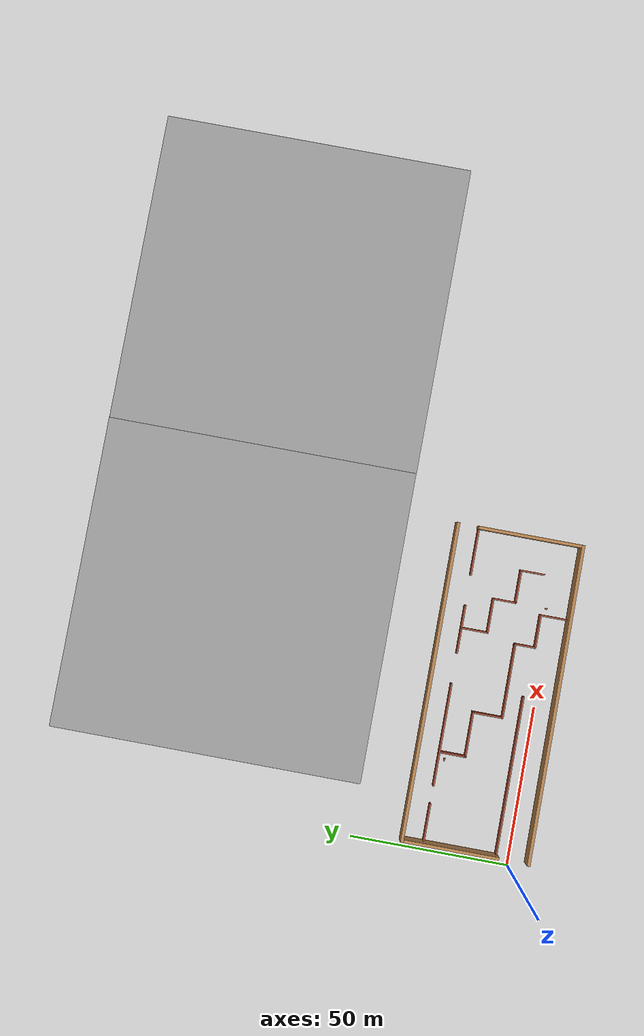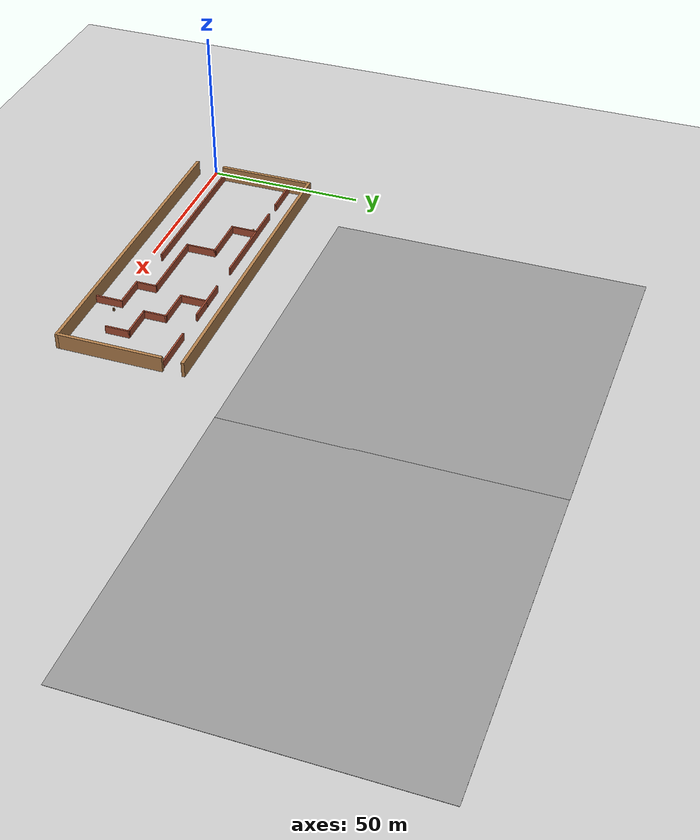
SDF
<sdf version="1.6">
 <world name="default">
  <model name="ground_plane">
   <static>1</static>
   <link name="link">
    <collision name="collision">
     <geometry><plane><normal>0 0 1</normal><size>100 100</size></plane></geometry>
     <surface><friction><ode><mu>100</mu><mu2>50</mu2></ode></friction></surface>
    </collision>
    <visual name="visual">
     <cast_shadows>0</cast_shadows>
     <geometry><plane><normal>0 0 1</normal><size>100 100</size></plane></geometry>
     <material>
      <script><uri>file://media/materials/scripts/gazebo.material</uri><name>Gazebo/Grey</name></script>
     </material>
    </visual>
   </link>
  </model>
  <model name="maze">
   <pose>52.7902 14.4068 0 0 -0 0</pose>
   <link name="Wall_1">
    <collision name="Wall_1_Collision">
     <geometry><box><size>101 1 5</size></box></geometry>
     <pose>0 0 2.5 0 -0 0</pose>
    </collision>
    <visual name="Wall_1_Visual">
     <pose>0 0 2.5 0 -0 0</pose>
     <geometry><box><size>101 1 5</size></box></geometry>
     <material>
      <script><uri>file://media/materials/scripts/gazebo.material</uri><name>Gazebo/Wood</name></script>
      <ambient>1 1 1 1</ambient>
     </material>
     <meta><layer>0</layer></meta>
    </visual>
    <pose>0 -19.946 0 0 -0 0</pose>
   </link>
   <link name="Wall_11">
    <collision name="Wall_11_Collision">
     <geometry><box><size>15.5 0.5 2.5</size></box></geometry>
     <pose>0 0 1.25 0 -0 0</pose>
    </collision>
    <visual name="Wall_11_Visual">
     <pose>0 0 1.25 0 -0 0</pose>
     <geometry><box><size>15.5 0.5 2.5</size></box></geometry>
     <material>
      <script><uri>file://media/materials/scripts/gazebo.material</uri><name>Gazebo/Bricks</name></script>
      <ambient>1 1 1 1</ambient>
     </material>
     <meta><layer>0</layer></meta>
    </visual>
    <pose>42.5 12.946 0 0 -0 0</pose>
   </link>
   <link name="Wall_13">
    <collision name="Wall_13_Collision">
     <geometry><box><size>8.756 0.5 2.5</size></box></geometry>
     <pose>0 0 1.25 0 -0 0</pose>
    </collision>
    <visual name="Wall_13_Visual">
     <pose>0 0 1.25 0 -0 0</pose>
     <geometry><box><size>8.756 0.5 2.5</size></box></geometry>
     <material>
      <script><uri>file://media/materials/scripts/gazebo.material</uri><name>Gazebo/Bricks</name></script>
      <ambient>1 1 1 1</ambient>
     </material>
     <meta><layer>0</layer></meta>
    </visual>
    <pose>-21.462 8.818 0 0 -0 -1.5708</pose>
   </link>
   <link name="Wall_14">
    <collision name="Wall_14_Collision">
     <geometry><box><size>14.529 0.5 2.5</size></box></geometry>
     <pose>0 0 1.25 0 -0 0</pose>
    </collision>
    <visual name="Wall_14_Visual">
     <pose>0 0 1.25 0 -0 0</pose>
     <geometry><box><size>14.529 0.5 2.5</size></box></geometry>
     <material>
      <script><uri>file://media/materials/scripts/gazebo.material</uri><name>Gazebo/Bricks</name></script>
      <ambient>1 1 1 1</ambient>
     </material>
     <meta><layer>0</layer></meta>
    </visual>
    <pose>-14.4475 4.69 0 0 -0 0</pose>
   </link>
   <link name="Wall_15">
    <collision name="Wall_15_Collision">
     <geometry><box><size>9.85048 0.5 2.5</size></box></geometry>
     <pose>0 0 1.25 0 -0 0</pose>
    </collision>
    <visual name="Wall_15_Visual">
     <pose>0 0 1.25 0 -0 0</pose>
     <geometry><box><size>9.85048 0.5 2.5</size></box></geometry>
     <material>
      <script><uri>file://media/materials/scripts/gazebo.material</uri><name>Gazebo/Bricks</name></script>
      <ambient>1 1 1 1</ambient>
     </material>
     <meta><layer>0</layer></meta>
    </visual>
    <pose>-7.433 0.015 0 0 -0 -1.5708</pose>
   </link>
   <link name="Wall_16">
    <collision name="Wall_16_Collision">
     <geometry><box><size>23.921 0.5 2.5</size></box></geometry>
     <pose>0 0 1.25 0 -0 0</pose>
    </collision>
    <visual name="Wall_16_Visual">
     <pose>0 0 1.25 0 -0 0</pose>
     <geometry><box><size>23.921 0.5 2.5</size></box></geometry>
     <material>
      <script><uri>file://media/materials/scripts/gazebo.material</uri><name>Gazebo/Bricks</name></script>
      <ambient>1 1 1 1</ambient>
     </material>
     <meta><layer>0</layer></meta>
    </visual>
    <pose>4.2775 -4.66 0 0 -0 0</pose>
   </link>
   <link name="Wall_17">
    <collision name="Wall_17_Collision">
     <geometry><box><size>6.85048 0.5 2.5</size></box></geometry>
     <pose>0 0 1.25 0 -0 0</pose>
    </collision>
    <visual name="Wall_17_Visual">
     <pose>0 0 1.25 0 -0 0</pose>
     <geometry><box><size>6.85048 0.5 2.5</size></box></geometry>
     <material>
      <script><uri>file://media/materials/scripts/gazebo.material</uri><name>Gazebo/Bricks</name></script>
      <ambient>1 1 1 1</ambient>
     </material>
     <meta><layer>0</layer></meta>
    </visual>
    <pose>15.988 -7.835 0 0 -0 -1.5708</pose>
   </link>
   <link name="Wall_18">
    <collision name="Wall_18_Collision">
     <geometry><box><size>10.85 0.5 2.5</size></box></geometry>
     <pose>0 0 1.25 0 -0 0</pose>
    </collision>
    <visual name="Wall_18_Visual">
     <pose>0 0 1.25 0 -0 0</pose>
     <geometry><box><size>10.85 0.5 2.5</size></box></geometry>
     <material>
      <script><uri>file://media/materials/scripts/gazebo.material</uri><name>Gazebo/Bricks</name></script>
      <ambient>1 1 1 1</ambient>
     </material>
     <meta><layer>0</layer></meta>
    </visual>
    <pose>21.163 -11.01 0 0 -0 0</pose>
   </link>
   <link name="Wall_19">
    <collision name="Wall_19_Collision">
     <geometry><box><size>9.544 0.5 2.5</size></box></geometry>
     <pose>0 0 1.25 0 -0 0</pose>
    </collision>
    <visual name="Wall_19_Visual">
     <pose>0 0 1.25 0 -0 0</pose>
     <geometry><box><size>9.544 0.5 2.5</size></box></geometry>
     <material>
      <script><uri>file://media/materials/scripts/gazebo.material</uri><name>Gazebo/Bricks</name></script>
      <ambient>1 1 1 1</ambient>
     </material>
     <meta><layer>0</layer></meta>
    </visual>
    <pose>26.338 -15.532 0 0 -0 -1.5708</pose>
   </link>
   <link name="Wall_23">
    <collision name="Wall_23_Collision">
     <geometry><box><size>50.5 0.5 2.5</size></box></geometry>
     <pose>0 0 1.25 0 -0 0</pose>
    </collision>
    <visual name="Wall_23_Visual">
     <pose>0 0 1.25 0 -0 0</pose>
     <geometry><box><size>50.5 0.5 2.5</size></box></geometry>
     <material>
      <script><uri>file://media/materials/scripts/gazebo.material</uri><name>Gazebo/Bricks</name></script>
      <ambient>1 1 1 1</ambient>
     </material>
     <meta><layer>0</layer></meta>
    </visual>
    <pose>-25 -10.054 0 0 -0 3.14159</pose>
   </link>
   <link name="Wall_25">
    <collision name="Wall_25_Collision">
     <geometry><box><size>8.864 0.5 2.5</size></box></geometry>
     <pose>0 0 1.25 0 -0 0</pose>
    </collision>
    <visual name="Wall_25_Visual">
     <pose>0 0 1.25 0 -0 0</pose>
     <geometry><box><size>8.864 0.5 2.5</size></box></geometry>
     <material>
      <script><uri>file://media/materials/scripts/gazebo.material</uri><name>Gazebo/Bricks</name></script>
      <ambient>1 1 1 1</ambient>
     </material>
     <meta><layer>0</layer></meta>
    </visual>
    <pose>17.924 8.764 0 0 -0 -1.5708</pose>
   </link>
   <link name="Wall_26">
    <collision name="Wall_26_Collision">
     <geometry><box><size>11.3502 0.5 2.5</size></box></geometry>
     <pose>0 0 1.25 0 -0 0</pose>
    </collision>
    <visual name="Wall_26_Visual">
     <pose>0 0 1.25 0 -0 0</pose>
     <geometry><box><size>11.3502 0.5 2.5</size></box></geometry>
     <material>
      <script><uri>file://media/materials/scripts/gazebo.material</uri><name>Gazebo/Bricks</name></script>
      <ambient>1 1 1 1</ambient>
     </material>
     <meta><layer>0</layer></meta>
    </visual>
    <pose>23.349 4.582 0 0 -0 0</pose>
   </link>
   <link name="Wall_27">
    <collision name="Wall_27_Collision">
     <geometry><box><size>7.60009 0.5 2.5</size></box></geometry>
     <pose>0 0 1.25 0 -0 0</pose>
    </collision>
    <visual name="Wall_27_Visual">
     <pose>0 0 1.25 0 -0 0</pose>
     <geometry><box><size>7.60009 0.5 2.5</size></box></geometry>
     <material>
      <script><uri>file://media/materials/scripts/gazebo.material</uri><name>Gazebo/Bricks</name></script>
      <ambient>1 1 1 1</ambient>
     </material>
     <meta><layer>0</layer></meta>
    </visual>
    <pose>28.774 1.032 0 0 -0 -1.5708</pose>
   </link>
   <link name="Wall_28">
    <collision name="Wall_28_Collision">
     <geometry><box><size>10.85 0.5 2.5</size></box></geometry>
     <pose>0 0 1.25 0 -0 0</pose>
    </collision>
    <visual name="Wall_28_Visual">
     <pose>0 0 1.25 0 -0 0</pose>
     <geometry><box><size>10.85 0.5 2.5</size></box></geometry>
     <material>
      <script><uri>file://media/materials/scripts/gazebo.material</uri><name>Gazebo/Bricks</name></script>
      <ambient>1 1 1 1</ambient>
     </material>
     <meta><layer>0</layer></meta>
    </visual>
    <pose>33.949 -2.518 0 0 -0 0</pose>
   </link>
   <link name="Wall_29">
    <collision name="Wall_29_Collision">
     <geometry><box><size>7.85009 0.5 2.5</size></box></geometry>
     <pose>0 0 1.25 0 -0 0</pose>
    </collision>
    <visual name="Wall_29_Visual">
     <pose>0 0 1.25 0 -0 0</pose>
     <geometry><box><size>7.85009 0.5 2.5</size></box></geometry>
     <material>
      <script><uri>file://media/materials/scripts/gazebo.material</uri><name>Gazebo/Bricks</name></script>
      <ambient>1 1 1 1</ambient>
     </material>
     <meta><layer>0</layer></meta>
    </visual>
    <pose>39.124 -6.193 0 0 -0 -1.5708</pose>
   </link>
   <link name="Wall_3">
    <collision name="Wall_3_Collision">
     <geometry><box><size>101.001 1 5</size></box></geometry>
     <pose>0 0 2.5 0 -0 0</pose>
    </collision>
    <visual name="Wall_3_Visual">
     <pose>0 0 2.5 0 -0 0</pose>
     <geometry><box><size>101.001 1 5</size></box></geometry>
     <material>
      <script><uri>file://media/materials/scripts/gazebo.material</uri><name>Gazebo/Wood</name></script>
      <ambient>1 1 1 1</ambient>
     </material>
     <meta><layer>0</layer></meta>
    </visual>
    <pose>0 19.946 0 0 -0 3.14159</pose>
   </link>
   <link name="Wall_32">
    <collision name="Wall_32_Collision">
     <geometry><box><size>31 1 5</size></box></geometry>
     <pose>0 0 2.5 0 -0 0</pose>
    </collision>
    <visual name="Wall_32_Visual">
     <pose>0 0 2.5 0 -0 0</pose>
     <geometry><box><size>31 1 5</size></box></geometry>
     <material>
      <script><uri>file://media/materials/scripts/gazebo.material</uri><name>Gazebo/Wood</name></script>
      <ambient>1 1 1 1</ambient>
     </material>
     <meta><layer>0</layer></meta>
    </visual>
    <pose>-50 4.946 0 0 -0 -1.5708</pose>
   </link>
   <link name="Wall_34">
    <collision name="Wall_34_Collision">
     <geometry><box><size>33.892 1 5</size></box></geometry>
     <pose>0 0 2.5 0 -0 0</pose>
    </collision>
    <visual name="Wall_34_Visual">
     <pose>0 0 2.5 0 -0 0</pose>
     <geometry><box><size>33.892 1 5</size></box></geometry>
     <material>
      <script><uri>file://media/materials/scripts/gazebo.material</uri><name>Gazebo/Wood</name></script>
      <ambient>1 1 1 1</ambient>
     </material>
     <meta><layer>0</layer></meta>
    </visual>
    <pose>50 -3.5 0 0 -0 -1.5708</pose>
   </link>
   <link name="Wall_5">
    <collision name="Wall_5_Collision">
     <geometry><box><size>12.5 0.5 2.5</size></box></geometry>
     <pose>0 0 1.25 0 -0 0</pose>
    </collision>
    <visual name="Wall_5_Visual">
     <pose>0 0 1.25 0 -0 0</pose>
     <geometry><box><size>12.5 0.5 2.5</size></box></geometry>
     <material>
      <script><uri>file://media/materials/scripts/gazebo.material</uri><name>Gazebo/Bricks</name></script>
      <ambient>1 1 1 1</ambient>
     </material>
     <meta><layer>0</layer></meta>
    </visual>
    <pose>-44 12.946 0 0 -0 0</pose>
   </link>
   <link name="Wall_7">
    <collision name="Wall_7_Collision">
     <geometry><box><size>32.5 0.5 2.5</size></box></geometry>
     <pose>0 0 1.25 0 -0 0</pose>
    </collision>
    <visual name="Wall_7_Visual">
     <pose>0 0 1.25 0 -0 0</pose>
     <geometry><box><size>32.5 0.5 2.5</size></box></geometry>
     <material>
      <script><uri>file://media/materials/scripts/gazebo.material</uri><name>Gazebo/Bricks</name></script>
      <ambient>1 1 1 1</ambient>
     </material>
     <meta><layer>0</layer></meta>
    </visual>
    <pose>-16 12.946 0 0 -0 0</pose>
   </link>
   <link name="Wall_9">
    <collision name="Wall_9_Collision">
     <geometry><box><size>15.5 0.5 2.5</size></box></geometry>
     <pose>0 0 1.25 0 -0 0</pose>
    </collision>
    <visual name="Wall_9_Visual">
     <pose>0 0 1.25 0 -0 0</pose>
     <geometry><box><size>15.5 0.5 2.5</size></box></geometry>
     <material>
      <script><uri>file://media/materials/scripts/gazebo.material</uri><name>Gazebo/Bricks</name></script>
      <ambient>1 1 1 1</ambient>
     </material>
     <meta><layer>0</layer></meta>
    </visual>
    <pose>17.5 12.946 0 0 -0 0</pose>
   </link>
   <static>1</static>
  </model>
  <model name="bookshelf">
   <static>1</static>
   <link name="link">
    <inertial><mass>1</mass></inertial>
    <collision name="back">
     <pose>0 0.005 0.6 0 -0 0</pose>
     <geometry><box><size>0.9 0.01 1.2</size></box></geometry>
    </collision>
    <visual name="visual1">
     <pose>0 0.005 0.6 0 -0 0</pose>
     <geometry><box><size>0.9 0.01 1.2</size></box></geometry>
     <material>
      <script><uri>file://media/materials/scripts/gazebo.material</uri><name>Gazebo/Wood</name></script>
     </material>
    </visual>
    <collision name="left_side">
     <pose>0.45 -0.195 0.6 0 -0 0</pose>
     <geometry><box><size>0.02 0.4 1.2</size></box></geometry>
    </collision>
    <visual name="visual2">
     <pose>0.45 -0.195 0.6 0 -0 0</pose>
     <geometry><box><size>0.02 0.4 1.2</size></box></geometry>
     <material>
      <script><uri>file://media/materials/scripts/gazebo.material</uri><name>Gazebo/Wood</name></script>
     </material>
    </visual>
    <collision name="right_side">
     <pose>-0.45 -0.195 0.6 0 -0 0</pose>
     <geometry><box><size>0.02 0.4 1.2</size></box></geometry>
    </collision>
    <visual name="visual3">
     <pose>-0.45 -0.195 0.6 0 -0 0</pose>
     <geometry><box><size>0.02 0.4 1.2</size></box></geometry>
     <material>
      <script><uri>file://media/materials/scripts/gazebo.material</uri><name>Gazebo/Wood</name></script>
     </material>
    </visual>
    <collision name="bottom">
     <pose>0 -0.195 0.03 0 -0 0</pose>
     <geometry><box><size>0.88 0.4 0.06</size></box></geometry>
    </collision>
    <visual name="visual4">
     <pose>0 -0.195 0.03 0 -0 0</pose>
     <geometry><box><size>0.88 0.4 0.06</size></box></geometry>
     <material>
      <script><uri>file://media/materials/scripts/gazebo.material</uri><name>Gazebo/Wood</name></script>
     </material>
    </visual>
    <collision name="top">
     <pose>0 -0.195 1.19 0 -0 0</pose>
     <geometry><box><size>0.88 0.4 0.02</size></box></geometry>
    </collision>
    <visual name="visual5">
     <pose>0 -0.195 1.19 0 -0 0</pose>
     <geometry><box><size>0.88 0.4 0.02</size></box></geometry>
     <material>
      <script><uri>file://media/materials/scripts/gazebo.material</uri><name>Gazebo/Wood</name></script>
     </material>
    </visual>
    <collision name="low_shelf">
     <pose>0 -0.195 0.43 0 -0 0</pose>
     <geometry><box><size>0.88 0.4 0.02</size></box></geometry>
    </collision>
    <visual name="visual6">
     <pose>0 -0.195 0.43 0 -0 0</pose>
     <geometry><box><size>0.88 0.4 0.02</size></box></geometry>
     <material>
      <script><uri>file://media/materials/scripts/gazebo.material</uri><name>Gazebo/Wood</name></script>
     </material>
    </visual>
    <collision name="high_shelf">
     <pose>0 -0.195 0.8 0 -0 0</pose>
     <geometry><box><size>0.88 0.4 0.02</size></box></geometry>
    </collision>
    <visual name="visual7">
     <pose>0 -0.195 0.8 0 -0 0</pose>
     <geometry><box><size>0.88 0.4 0.02</size></box></geometry>
     <material>
      <script><uri>file://media/materials/scripts/gazebo.material</uri><name>Gazebo/Wood</name></script>
     </material>
    </visual>
   </link>
   <pose>29.044 25.4269 0 0 -0 0</pose>
  </model>
  <model name="cabinet_clone_1">
   <static>1</static>
   <link name="cabinet_bottom_plate">
    <inertial>
     <pose>0 0 -1 0 -0 0</pose>
     <inertia><ixx>2.05</ixx><ixy>0</ixy><ixz>0</ixz><iyy>2.05</iyy><iyz>0</iyz><izz>2.05</izz></inertia>
     <mass>25</mass>
    </inertial>
    <collision name="cabinet_bottom_plate_geom">
     <pose>0 0 0.01 0 -0 0</pose>
     <geometry><box><size>0.45 0.45 0.02</size></box></geometry>
    </collision>
    <visual name="cabinet_bottom_plate_geom_visual">
     <pose>0 0 0.01 0 -0 0</pose>
     <geometry><box><size>0.45 0.45 0.02</size></box></geometry>
     <material>
      <script><uri>file://media/materials/scripts/gazebo.material</uri><name>Gazebo/Wood</name></script>
     </material>
    </visual>
    <collision name="cabinet_bottom_plate_geom_cabinet_back_plate">
     <pose>0.235 0 0.51 0 -0 0</pose>
     <geometry><box><size>0.02 0.45 1.02</size></box></geometry>
    </collision>
    <visual name="cabinet_bottom_plate_geom_cabinet_back_plate_visual">
     <pose>0.235 0 0.51 0 -0 0</pose>
     <geometry><box><size>0.02 0.45 1.02</size></box></geometry>
     <material>
      <script><uri>file://media/materials/scripts/gazebo.material</uri><name>Gazebo/Wood</name></script>
     </material>
    </visual>
    <collision name="cabinet_bottom_plate_geom_cabinet_left_plate">
     <pose>0 0.235 0.51 0 -0 0</pose>
     <geometry><box><size>0.45 0.02 1.02</size></box></geometry>
    </collision>
    <visual name="cabinet_bottom_plate_geom_cabinet_left_plate_visual">
     <pose>0 0.235 0.51 0 -0 0</pose>
     <geometry><box><size>0.45 0.02 1.02</size></box></geometry>
     <material>
      <script><uri>file://media/materials/scripts/gazebo.material</uri><name>Gazebo/Wood</name></script>
     </material>
    </visual>
    <collision name="cabinet_bottom_plate_geom_cabinet_middle_plate">
     <pose>0 0 0.51 0 -0 0</pose>
     <geometry><box><size>0.45 0.45 0.02</size></box></geometry>
    </collision>
    <visual name="cabinet_bottom_plate_geom_cabinet_middle_plate_visual">
     <pose>0 0 0.51 0 -0 0</pose>
     <geometry><box><size>0.45 0.45 0.02</size></box></geometry>
     <material>
      <script><uri>file://media/materials/scripts/gazebo.material</uri><name>Gazebo/Wood</name></script>
     </material>
    </visual>
    <collision name="cabinet_bottom_plate_geom_cabinet_right_plate">
     <pose>0 -0.235 0.51 0 -0 0</pose>
     <geometry><box><size>0.45 0.02 1.02</size></box></geometry>
    </collision>
    <visual name="cabinet_bottom_plate_geom_cabinet_right_plate_visual">
     <pose>0 -0.235 0.51 0 -0 0</pose>
     <geometry><box><size>0.45 0.02 1.02</size></box></geometry>
     <material>
      <script><uri>file://media/materials/scripts/gazebo.material</uri><name>Gazebo/Wood</name></script>
     </material>
    </visual>
    <collision name="cabinet_bottom_plate_geom_cabinet_top_plate">
     <pose>0 0 1.01 0 -0 0</pose>
     <geometry><box><size>0.45 0.45 0.02</size></box></geometry>
    </collision>
    <visual name="cabinet_bottom_plate_geom_cabinet_top_plate_visual">
     <pose>0 0 1.01 0 -0 0</pose>
     <geometry><box><size>0.45 0.45 0.02</size></box></geometry>
     <material>
      <script><uri>file://media/materials/scripts/gazebo.material</uri><name>Gazebo/Wood</name></script>
     </material>
    </visual>
   </link>
   <pose>81.4265 1.74674 0 0 0 -3.14159</pose>
  </model>
  <model name="ground_plane_2">
   <static>1</static>
   <link name="link">
    <collision name="collision">
     <geometry><plane><normal>0 0 1</normal><size>100 100</size></plane></geometry>
     <surface><friction><ode><mu>100</mu><mu2>50</mu2></ode></friction></surface>
    </collision>
    <visual name="visual">
     <cast_shadows>0</cast_shadows>
     <geometry><plane><normal>0 0 1</normal><size>100 100</size></plane></geometry>
     <material>
      <script><uri>file://media/materials/scripts/gazebo.material</uri><name>Gazebo/Grey</name></script>
     </material>
    </visual>
   </link>
   <pose>66.6173 99.8447 0 0 -0 0</pose>
  </model>
  <model name="ground_plane_3">
   <static>1</static>
   <link name="link">
    <collision name="collision">
     <geometry><plane><normal>0 0 1</normal><size>100 100</size></plane></geometry>
     <surface><friction><ode><mu>100</mu><mu2>50</mu2></ode></friction></surface>
    </collision>
    <visual name="visual">
     <cast_shadows>0</cast_shadows>
     <geometry><plane><normal>0 0 1</normal><size>100 100</size></plane></geometry>
     <material>
      <script><uri>file://media/materials/scripts/gazebo.material</uri><name>Gazebo/Grey</name></script>
     </material>
    </visual>
   </link>
   <pose>166.339 99.7771 0 0 -0 0</pose>
  </model>
 </world>
</sdf>
